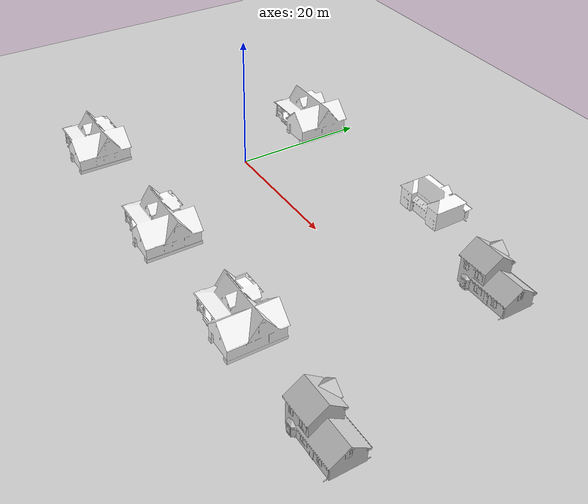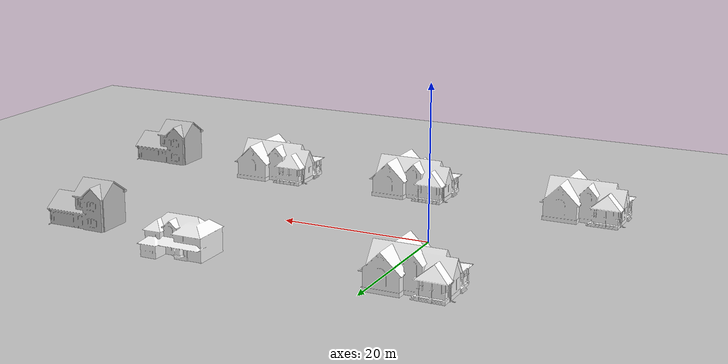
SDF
<sdf version="1.6">
 <world name="default">
  <light name="sun" type="directional">
   <pose>0 0 10 0 -0 0</pose>
   <diffuse>0.8 0.8 0.8 1</diffuse>
   <specular>0.1 0.1 0.1 1</specular>
   <attenuation>
    <range>1000</range>
    <constant>0.9</constant>
    <linear>0.01</linear>
    <quadratic>0.001</quadratic>
   </attenuation>
   <direction>-0.5 0.5 -1</direction>
  </light>
  <model name="ground_plane">
   <static>1</static>
   <link name="link">
    <collision name="collision">
     <geometry><plane><normal>0 0 1</normal><size>100 100</size></plane></geometry>
     <surface><friction><ode><mu>100</mu><mu2>50</mu2></ode></friction></surface>
    </collision>
    <visual name="visual">
     <cast_shadows>0</cast_shadows>
     <geometry><plane><normal>0 0 1</normal><size>100 100</size></plane></geometry>
     <material>
      <script><uri>file://media/materials/scripts/gazebo.material</uri><name>Gazebo/Grey</name></script>
     </material>
    </visual>
   </link>
  </model>
  <gravity>0 0 -9.8</gravity>
  <magnetic_field>6e-06 2.3e-05 -4.2e-05</magnetic_field>
  <atmosphere type="adiabatic"/>
  <physics name="default_physics" default="0" type="ode">
   <max_step_size>0.001</max_step_size>
   <real_time_factor>1</real_time_factor>
   <real_time_update_rate>1000</real_time_update_rate>
  </physics>
  <scene><ambient>0.4 0.4 0.4 1</ambient><background>0.7 0.7 0.7 1</background><shadows>1</shadows></scene>
  <spherical_coordinates>
   <surface_model>EARTH_WGS84</surface_model>
   <latitude_deg>0</latitude_deg>
   <longitude_deg>0</longitude_deg>
   <elevation>0</elevation>
   <heading_deg>0</heading_deg>
  </spherical_coordinates>
  <model name="House 3">
   <static>1</static>
   <link name="link">
    <collision name="collision">
     <geometry><mesh><uri>model://house_3/meshes/house_3.dae</uri><scale>1 1 1</scale></mesh></geometry>
    </collision>
    <visual name="visual">
     <geometry><mesh><uri>model://house_3/meshes/house_3.dae</uri><scale>1 1 1</scale></mesh></geometry>
     <material>
      <script>
       <uri>model://house_3/materials/scripts</uri>
       <uri>model://house_3/materials/textures</uri>
       <name>House_3/Diffuse</name>
      </script>
     </material>
    </visual>
   </link>
   <pose>42.6519 12.127 0 0 -0 0</pose>
  </model>
  <model name="House 3_0">
   <static>1</static>
   <link name="link">
    <collision name="collision">
     <geometry><mesh><uri>model://house_3/meshes/house_3.dae</uri><scale>1 1 1</scale></mesh></geometry>
    </collision>
    <visual name="visual">
     <geometry><mesh><uri>model://house_3/meshes/house_3.dae</uri><scale>1 1 1</scale></mesh></geometry>
     <material>
      <script>
       <uri>model://house_3/materials/scripts</uri>
       <uri>model://house_3/materials/textures</uri>
       <name>House_3/Diffuse</name>
      </script>
     </material>
    </visual>
   </link>
   <pose>50.9535 -19.0357 0 0 -0 0</pose>
  </model>
  <model name="House 2">
   <static>1</static>
   <link name="link">
    <collision name="collision">
     <geometry><mesh><uri>model://house_2/meshes/house_2.dae</uri><scale>1 1 1</scale></mesh></geometry>
    </collision>
    <visual name="visual">
     <geometry><mesh><uri>model://house_2/meshes/house_2.dae</uri><scale>1 1 1</scale></mesh></geometry>
     <material>
      <script>
       <uri>model://house_2/materials/scripts</uri>
       <uri>model://house_2/materials/textures</uri>
       <name>House_2/Diffuse</name>
      </script>
     </material>
    </visual>
   </link>
   <pose>24.2151 16.4589 0 0 -0 0</pose>
  </model>
  <model name="House 1">
   <static>1</static>
   <link name="link">
    <collision name="collision">
     <geometry><mesh><uri>model://house_1/meshes/house_1.dae</uri><scale>1 1 1</scale></mesh></geometry>
    </collision>
    <visual name="visual">
     <geometry><mesh><uri>model://house_1/meshes/house_1.dae</uri><scale>1 1 1</scale></mesh></geometry>
     <material>
      <script>
       <uri>model://house_1/materials/scripts</uri>
       <uri>model://house_1/materials/textures</uri>
       <name>House_1/Diffuse</name>
      </script>
      <shader type="normal_map_object_space"><normal_map>House_1_Normal.png</normal_map></shader>
     </material>
    </visual>
   </link>
   <pose>31.0808 -18.2709 0 0 -0 0</pose>
  </model>
  <model name="House 1_0">
   <static>1</static>
   <link name="link">
    <collision name="collision">
     <geometry><mesh><uri>model://house_1/meshes/house_1.dae</uri><scale>1 1 1</scale></mesh></geometry>
    </collision>
    <visual name="visual">
     <geometry><mesh><uri>model://house_1/meshes/house_1.dae</uri><scale>1 1 1</scale></mesh></geometry>
     <material>
      <script>
       <uri>model://house_1/materials/scripts</uri>
       <uri>model://house_1/materials/textures</uri>
       <name>House_1/Diffuse</name>
      </script>
      <shader type="normal_map_object_space"><normal_map>House_1_Normal.png</normal_map></shader>
     </material>
    </visual>
   </link>
   <pose>-4.61964 14.748 0 0 -0 0</pose>
  </model>
  <model name="House 1_1">
   <static>1</static>
   <link name="link">
    <collision name="collision">
     <geometry><mesh><uri>model://house_1/meshes/house_1.dae</uri><scale>1 1 1</scale></mesh></geometry>
    </collision>
    <visual name="visual">
     <geometry><mesh><uri>model://house_1/meshes/house_1.dae</uri><scale>1 1 1</scale></mesh></geometry>
     <material>
      <script>
       <uri>model://house_1/materials/scripts</uri>
       <uri>model://house_1/materials/textures</uri>
       <name>House_1/Diffuse</name>
      </script>
      <shader type="normal_map_object_space"><normal_map>House_1_Normal.png</normal_map></shader>
     </material>
    </visual>
   </link>
   <pose>-14.4687 -18.7797 0 0 -0 0</pose>
  </model>
  <model name="House 1_2">
   <static>1</static>
   <link name="link">
    <collision name="collision">
     <geometry><mesh><uri>model://house_1/meshes/house_1.dae</uri><scale>1 1 1</scale></mesh></geometry>
    </collision>
    <visual name="visual">
     <geometry><mesh><uri>model://house_1/meshes/house_1.dae</uri><scale>1 1 1</scale></mesh></geometry>
     <material>
      <script>
       <uri>model://house_1/materials/scripts</uri>
       <uri>model://house_1/materials/textures</uri>
       <name>House_1/Diffuse</name>
      </script>
      <shader type="normal_map_object_space"><normal_map>House_1_Normal.png</normal_map></shader>
     </material>
    </visual>
   </link>
   <pose>9.86971 -18.7813 0 0 -0 0</pose>
  </model>
 </world>
</sdf>
